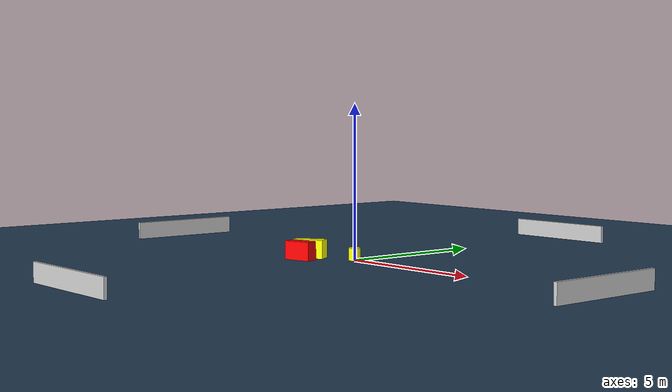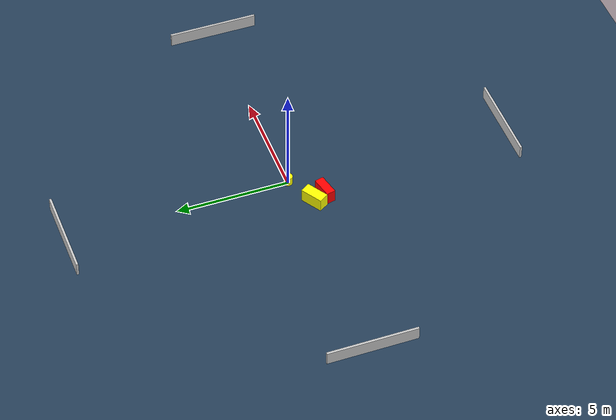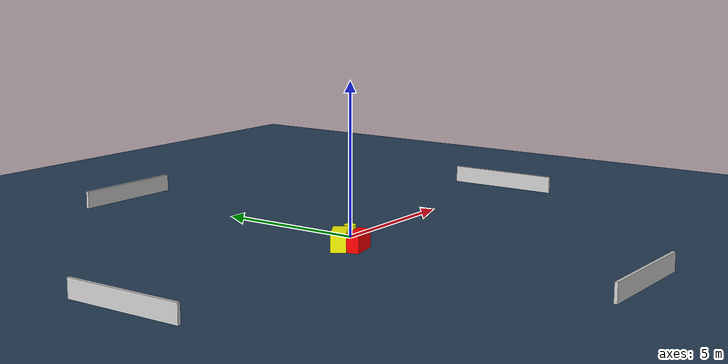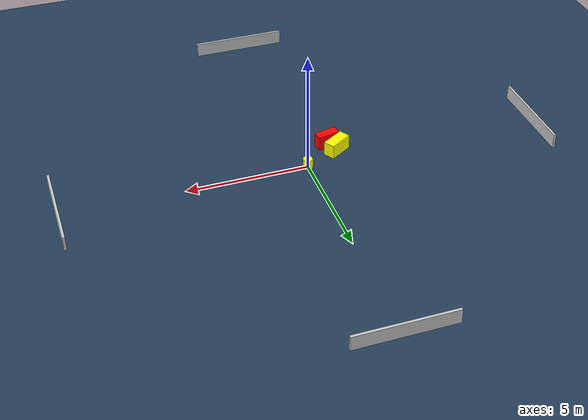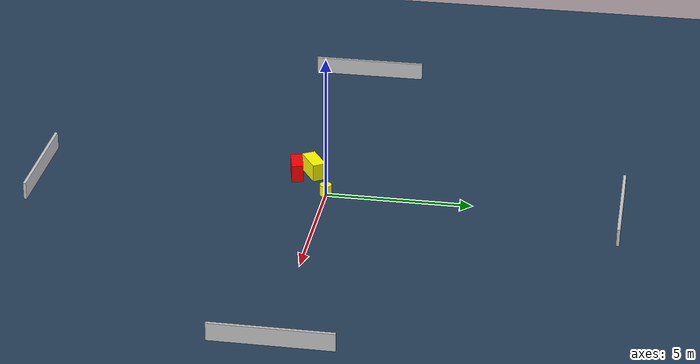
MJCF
<?xml version="1.0" ?>
<mujoco model="generated_environment">
  <option timestep="0.01" integrator="RK4" cone="elliptic"/>
  <default>
    <geom density="1"/>
  </default>
  <asset>
    <texture builtin="gradient" height="3072" name="skybox" rgb1="0.3 0.5 0.7" rgb2="0 0 0" type="skybox" width="512"/>
    <texture builtin="checker" height="300" name="groundplane" rgb1="0.2 0.3 0.4" rgb2="0.1 0.2 0.3" type="2d" width="300"/>
    <material name="groundplane" reflectance="0.2" texrepeat="5 5" texture="groundplane"/>
  </asset>
  <worldbody>
    <light dir="0 0 -1" directional="true" pos="0 0 1.5"/>
    <geom condim="3" friction="0.5 0.005 0.001" material="groundplane" name="floor" pos="0 0 0" size="0 0 0.05" type="plane"/>
    <body name="walls">
      <geom name="wall_1" condim="4" pos="-10.0 0.0 0.3" rgba="0.800000011920929 0.800000011920929 0.800000011920929 1.0" size="0.05 2.0 0.3" type="box"/>
      <geom name="wall_2" condim="4" pos="10.0 0.0 0.3" rgba="0.800000011920929 0.800000011920929 0.800000011920929 1.0" size="0.05 2.0 0.3" type="box"/>
      <geom name="wall_3" condim="4" pos="0.0 -10.0 0.3" rgba="0.800000011920929 0.800000011920929 0.800000011920929 1.0" size="2.0 0.05 0.3" type="box"/>
      <geom name="wall_4" condim="4" pos="0.0 10.0 0.3" rgba="0.800000011920929 0.800000011920929 0.800000011920929 1.0" size="2.0 0.05 0.3" type="box"/>
    </body>
    <body name="robot">
      <joint name="joint_x" type="slide" pos="0 0 0" axis="1 0 0"/>
      <joint name="joint_y" type="slide" pos="0 0 0" axis="0 1 0"/>
      <geom name="robot" type="cylinder" pos="0.0 0.0 0.2" size="0.2 0.2 0.0" mass="5.0" friction="1.0 0.005 0.0001" condim="4" rgba="1.0 1.0 0.0 1.0"/>
    </body>
    <body name="obstacle_1_movable">
      <geom name="obstacle_1_movable" condim="4" pos="-1.4737515011451645 -0.6612898633550632 0.3" euler="0 0 301.646750685338" friction="0.0 0.005 0.001" rgba="1.0 1.0 0.0 1.0" size="0.24089168210588924 0.516900313877457 0.3" type="box" mass="0.1"/>
      <joint type="free"/>
    </body>
    <body name="obstacle_2_static">
      <geom name="obstacle_2_static" condim="4" pos="-1.2524021848774018 -1.2203934975888435 0.3" euler="0 0 192.7203180698659" friction="0.0 0.005 0.001" rgba="1.0 0.0 0.0 1.0" size="0.4748811708910021 0.20184553638514735 0.3" type="box"/>
    </body>
  </worldbody>
  <actuator>
    <motor name="actuator_x" joint="joint_x" gear="1" ctrlrange="-1 1"/>
    <motor name="actuator_y" joint="joint_y" gear="1" ctrlrange="-1 1"/>
  </actuator>
</mujoco>
